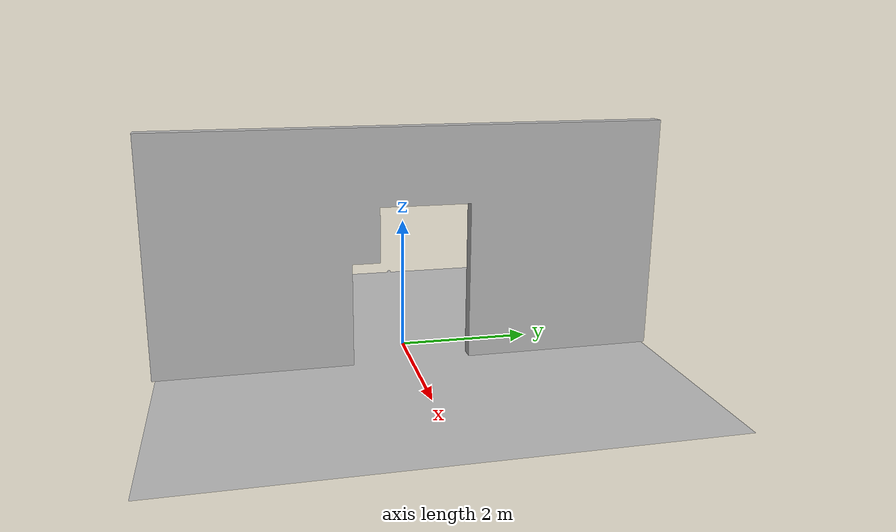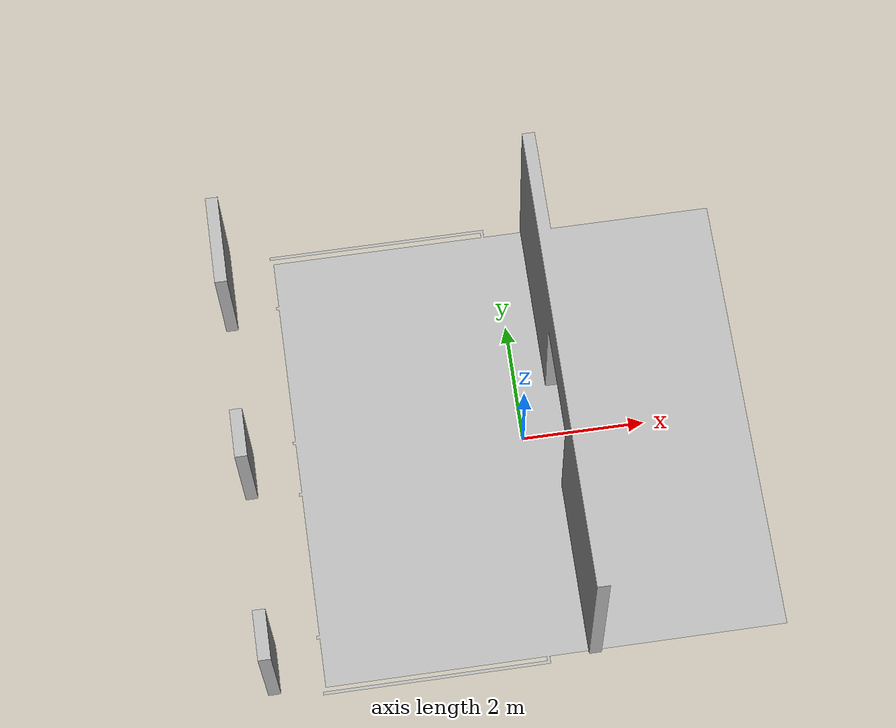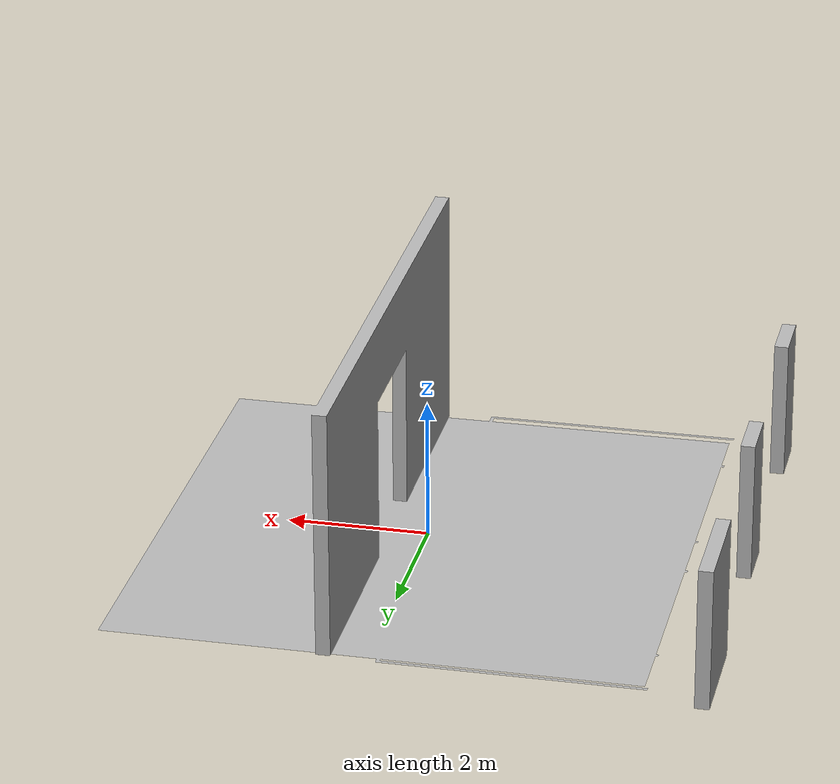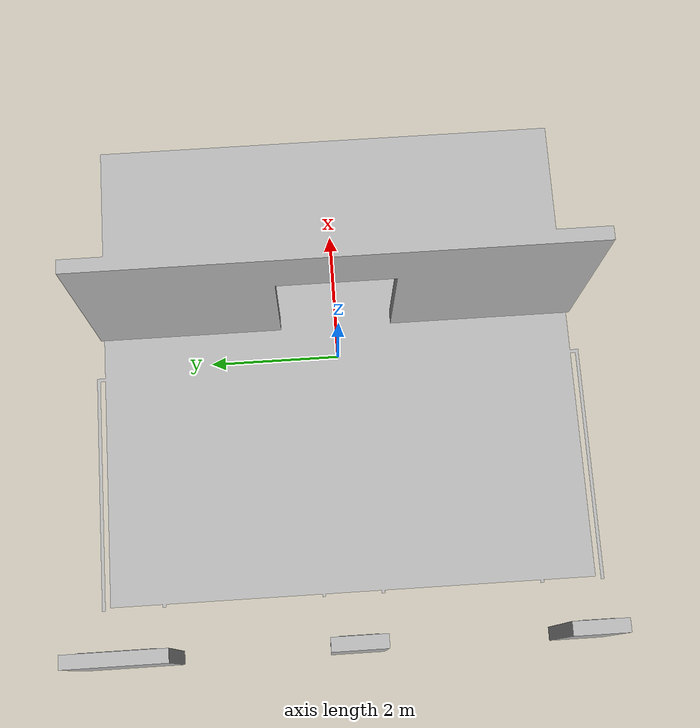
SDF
<?xml version="1.0" ?>
<sdf version="1.7">
  <model name="Wall_with_markers_big_board_onepattern_missing_markers_wear">
    <static>true</static>
    <pose>0 0 0 0 0 0</pose>
    <link name="link">
    <visual name="visual">
      <geometry>
        <mesh>
          <uri>model://wall_with_markers_big_board_onepattern_missing_markers_wear/meshes/model.dae</uri>
        </mesh>
      </geometry>
    </visual>
  </link>
</model>
</sdf>
